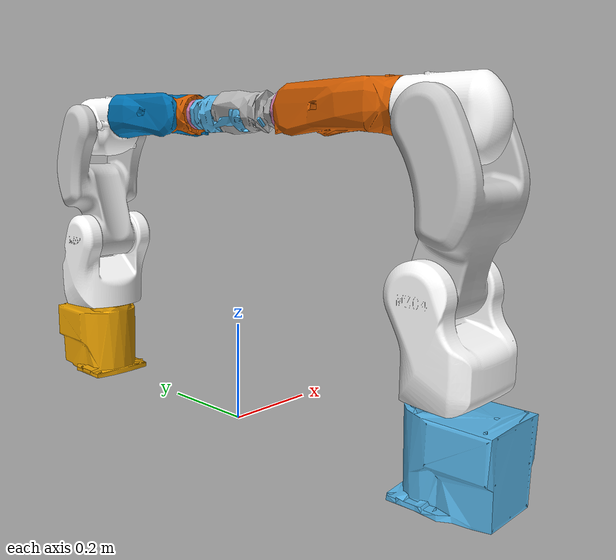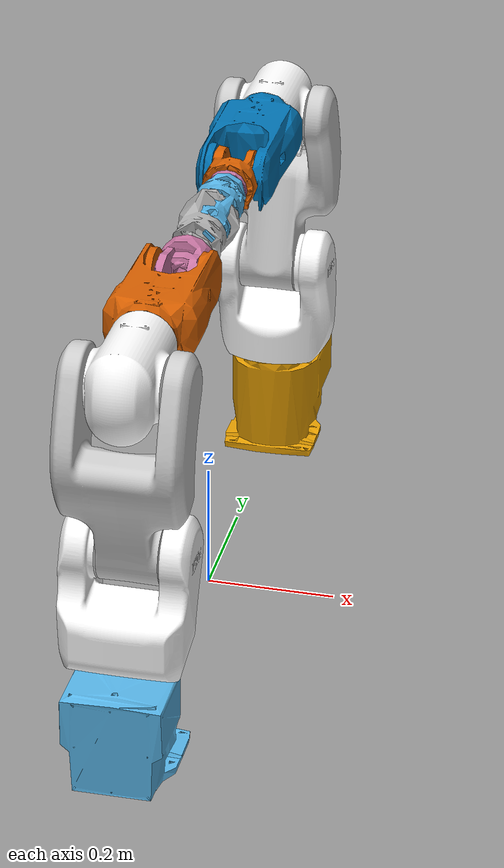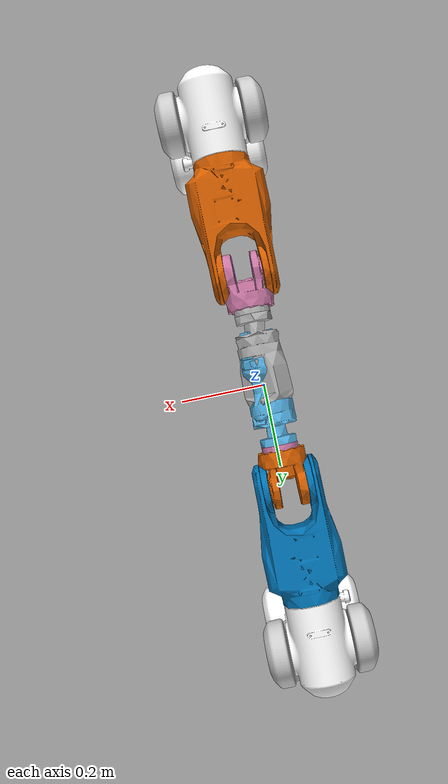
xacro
<?xml version="1.0" encoding="utf-8"?>
<robot xmlns:xacro="http://www.ros.org/wiki/xacro" name="dual_arm">
  <xacro:include filename="$(find mz04_description)/robots/mz04_arm.xacro"/>
  <xacro:include filename="$(find mz04_description)/robots/hand/robotiq_epick.xacro"/>
  <xacro:include filename="$(find mz04_description)/robots/hand/robotiq_hande.xacro"/>
  <xacro:arg name="arm_id_1" default="arm_L" />
  <xacro:arg name="arm_id_2" default="arm_R" />

  <link name="base" />
  <xacro:mz04_arm arm_id="$(arg arm_id_1)" connected_to="base"  xyz="0 -0.46534155 0" rpy="0 0 ${pi/2}"/>
  <xacro:mz04_arm arm_id="$(arg arm_id_2)" connected_to="base"  xyz="0 0.46534155 0" rpy="0 0 ${-pi/2}"/>

  <xacro:robotiq_epick parent="$(arg arm_id_1)_link6" name="hand_L">
    <origin xyz="0 0 0" rpy="0 0 -${pi}"/>
  </xacro:robotiq_epick>
  <xacro:robotiq_hand_e parent="$(arg arm_id_2)_link6" name="hand_R">
    <origin xyz="0 0 0" rpy="0 0 -${pi/2}"/>
  </xacro:robotiq_hand_e>

</robot>

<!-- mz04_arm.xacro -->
<robot xmlns:xacro="http://www.ros.org/wiki/xacro" name="mz04">
  <xacro:macro name="mz04_arm" params="arm_id:='mz04' description_pkg:='mz04_description' connected_to:='' xyz:='0 0 0' rpy:='0 0 0'">
    <xacro:unless value="${not connected_to}">
      <joint name="${arm_id}_joint_${connected_to}" type="fixed">
        <parent link="${connected_to}"/>
        <child link="${arm_id}_link0"/>
        <origin rpy="${rpy}" xyz="${xyz}"/>
      </joint>
    </xacro:unless>

    <!-- for simulation -->

    <xacro:property name="joint_damping" value="1.0"/>
    <!-- end for simulation -->

    <link name="${arm_id}_link0">
      <visual>
        <geometry>
          <mesh filename="package://${description_pkg}/meshes/visual/link0.dae"/>
        </geometry>
      </visual>
      <collision>
        <geometry>
          <mesh filename="package://${description_pkg}/meshes/collision/link0.stl"/>
        </geometry>
      </collision>
    </link>
    <link name="${arm_id}_link1">
      <visual>
        <geometry>
          <mesh filename="package://${description_pkg}/meshes/visual/link1.dae"/>
        </geometry>
      </visual>
      <collision>
        <geometry>
          <mesh filename="package://${description_pkg}/meshes/collision/link1.stl"/>
        </geometry>
      </collision>

      <!-- for simulation -->
      <inertial>
        <origin
          xyz="-0.0197023514199581 0.000938298692799631 0.0855256712156905"
          rpy="0 0 0" />
        <mass
          value="3.29244591173868" />
        <inertia
          ixx="0.0222350895636315"
          ixy="-6.0973596097687E-05"
          ixz="-0.00175393698078112"
          iyy="0.0154200096606875"
          iyz="-0.000258002191557829"
          izz="0.0150764764826899" />
      </inertial>
      <!-- end for simulation -->
    </link>
    <joint name="${arm_id}_joint1" type="revolute">
      <safety_controller k_position="100.0" k_velocity="40.0" soft_lower_limit="-2.97" soft_upper_limit="2.97"/>
      <origin rpy="0 0 0" xyz="0 0 0.171"/>
      <parent link="${arm_id}_link0"/>
      <child link="${arm_id}_link1"/>
      <axis xyz="0 0 1"/>
      <limit effort="100" lower="-2.97" upper="2.97" velocity="8.38"/>

      <!-- for simulation -->
      <dynamics damping="${joint_damping}"/>
      <!-- end for simulation -->
    </joint>
    <link name="${arm_id}_link2">
      <visual>
        <geometry>
          <mesh filename="package://${description_pkg}/meshes/visual/link2.dae"/>
        </geometry>
      </visual>
      <collision>
        <geometry>
          <mesh filename="package://${description_pkg}/meshes/collision/link2.stl"/>
        </geometry>
      </collision>

      <!-- for simulation -->
      <inertial>
        <origin
          xyz="-0.0229430342959031 -0.129313116426115 -0.000857512097067098"
          rpy="0 0 0" />
        <mass
          value="3.43354405526974" />
        <inertia
          ixx="0.0374859154128489"
          ixy="-0.000577795026903937"
          ixz="6.67389962661599E-05"
          iyy="0.0140465634657448"
          iyz="0.000377486259040234"
          izz="0.0301480758700004" />
      </inertial>
      <!-- end for simulation -->
    </link>
    <joint name="${arm_id}_joint2" type="revolute">
      <safety_controller k_position="100.0" k_velocity="40.0" soft_lower_limit="-2.53" soft_upper_limit="1.57"/>
      <origin rpy="${-pi/2} 0 0" xyz="0 0 0.169"/>
      <parent link="${arm_id}_link1"/>
      <child link="${arm_id}_link2"/>
      <axis xyz="0 0 -1"/>
      <limit effort="100" lower="-2.53" upper="1.57" velocity="8.03"/>

      <!-- for simulation -->
      <dynamics damping="${joint_damping}"/>
      <!-- end for simulation -->
    </joint>
    <link name="${arm_id}_link3">
      <visual>
        <geometry>
          <mesh filename="package://${description_pkg}/meshes/visual/link3.dae"/>
        </geometry>
      </visual>
      <collision>
        <geometry>
          <mesh filename="package://${description_pkg}/meshes/collision/link3.stl"/>
        </geometry>
      </collision>

      <!-- for simulation -->
      <inertial>
        <origin
          xyz="0.00557516997606589 -0.000280097155568842 -0.000264708631542377"
          rpy="0 0 0" />
        <mass
          value="1.75772574412506" />
        <inertia
          ixx="0.0032167713214568"
          ixy="-0.000191167581086016"
          ixz="1.23933539489604E-06"
          iyy="0.00322653422939074"
          iyz="5.25316745371768E-06"
          izz="0.00390619750681237" />
      </inertial>
      <!-- end for simulation -->
    </link>
    <joint name="${arm_id}_joint3" type="revolute">
      <safety_controller k_position="100.0" k_velocity="40.0" soft_lower_limit="-2.18" soft_upper_limit="4.89"/>
      <origin rpy="0 0 ${-pi/2}" xyz="0 -0.26 0"/>
      <parent link="${arm_id}_link2"/>
      <child link="${arm_id}_link3"/>
      <axis xyz="0 0 -1"/>
      <limit effort="100" lower="-2.18" upper="4.89" velocity="9.08"/>

      <!-- for simulation -->
      <dynamics damping="${joint_damping}"/>
      <!-- end for simulation -->
    </joint>
    <link name="${arm_id}_link4">
      <visual>
        <geometry>
          <mesh filename="package://${description_pkg}/meshes/visual/link4.dae"/>
        </geometry>
      </visual>
      <collision>
        <geometry>
          <mesh filename="package://${description_pkg}/meshes/collision/link4.stl"/>
        </geometry>
      </collision>

      <!-- for simulation -->
      <inertial>
        <origin
          xyz="0.00309024473150554 -0.000145366515908234 -0.102946189818116"
          rpy="0 0 0" />
        <mass
          value="1.70562401190118" />
        <inertia
          ixx="0.00721639807702088"
          ixy="-3.42236031590701E-07"
          ixz="5.92374124737924E-05"
          iyy="0.00686286874449402"
          iyz="5.84968158425155E-06"
          izz="0.00220615434229459" />
      </inertial>
      <!-- end for simulation -->
    </link>
    <joint name="${arm_id}_joint4" type="revolute">
      <safety_controller k_position="100.0" k_velocity="40.0" soft_lower_limit="-3.32" soft_upper_limit="3.32"/>
      <origin rpy="${-pi/2} 0 0" xyz="0.0249999999999999 0.28 0"/>
      <parent link="${arm_id}_link3"/>
      <child link="${arm_id}_link4"/>
      <axis xyz="0 0 1"/>
      <limit effort="100" lower="-3.32" upper="3.32" velocity="9.77"/>

      <!-- for simulation -->
      <dynamics damping="${joint_damping}"/>
      <!-- end for simulation -->
    </joint>
    <link name="${arm_id}_link5">
      <visual>
        <geometry>
          <mesh filename="package://${description_pkg}/meshes/visual/link5.dae"/>
        </geometry>
      </visual>
      <collision>
        <geometry>
          <mesh filename="package://${description_pkg}/meshes/collision/link5.stl"/>
        </geometry>
      </collision>

      <!-- for simulation -->
      <inertial>
        <origin
          xyz="-5.86547276966165E-05 0.0199090373472192 -0.00293631213635448"
          rpy="0 0 0" />
        <mass
          value="0.336399836903676" />
        <inertia
          ixx="0.000446624368283086"
          ixy="2.47061371480887E-07"
          ixz="6.15821325897774E-07"
          iyy="0.000330568174441235"
          iyz="-1.87705108529991E-05"
          izz="0.000351036334434016" />
      </inertial>
      <!-- end for simulation -->
    </link>
    <joint name="${arm_id}_joint5" type="revolute">
      <safety_controller k_position="100.0" k_velocity="40.0" soft_lower_limit="-2.09" soft_upper_limit="2.09"/>
      <origin rpy="${pi/2} 0 0" xyz="0 0 0"/>
      <parent link="${arm_id}_link4"/>
      <child link="${arm_id}_link5"/>
      <axis xyz="0 0 -1"/>
      <limit effort="100" lower="-2.09" upper="2.09" velocity="9.77"/>

      <!-- for simulation -->
      <dynamics damping="${joint_damping}"/>
      <!-- end for simulation -->
    </joint>
    <link name="${arm_id}_link6">
      <visual>
        <geometry>
          <mesh filename="package://${description_pkg}/meshes/visual/link6.dae"/>
        </geometry>
      </visual>
      <collision>
        <geometry>
          <mesh filename="package://${description_pkg}/meshes/collision/link6.stl"/>
        </geometry>
      </collision>

      <!-- for simulation -->
      <inertial>
        <origin
          xyz="0.00020870301755449 5.54207254168023E-05 0.0685507759319275"
          rpy="0 0 0" />
        <mass
          value="0.0340082287388899" />
        <inertia
          ixx="8.72489057883343E-06"
          ixy="5.14603740499548E-08"
          ixz="-7.72265367887762E-09"
          iyy="8.58258061822553E-06"
          iyz="-2.01661845696461E-09"
          izz="1.61785714739617E-05" />
      </inertial>
      <!-- end for simulation -->
    </link>
    <joint name="${arm_id}_joint6" type="revolute">
      <safety_controller k_position="100.0" k_velocity="40.0" soft_lower_limit="-6.28" soft_upper_limit="6.28"/>
      <origin rpy="${-pi/2} 0 0" xyz="0 0.072 0"/>
      <parent link="${arm_id}_link5"/>
      <child link="${arm_id}_link6"/>
      <axis xyz="0 0 1"/>
      <limit effort="10" lower="-6.28" upper="6.28" velocity="15.71"/>

      <!-- for simulation -->
      <dynamics damping="${joint_damping}"/>
      <!-- end for simulation -->
    </joint>
  </xacro:macro>
</robot>

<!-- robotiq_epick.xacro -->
<robot xmlns:xacro="http://www.ros.org/wiki/xacro" name="robotiq_epick">
  <xacro:macro name="robotiq_epick" params="parent name *origin ">
    <xacro:unless value="${parent == ''}">
      <joint name="${parent}_${name}_ee_joint" type="fixed">
        <xacro:insert_block name="origin"/>
        <parent link="${parent}"/>
        <child link="${name}_base"/>
      </joint>
    </xacro:unless>
    <link name="${name}_base">
      <visual>
        <geometry>
          <mesh filename="package://mz04_description/meshes/visual/white-robotiq_epick.dae"/>
        </geometry>
      </visual>
      <collision>
        <geometry>
          <mesh filename="package://mz04_description/meshes/collision/robotiq_epick.stl"/>
        </geometry>
      </collision>

      <!-- for simulation -->
      <inertial>
        <origin xyz="0 0 0" rpy="0 0 0" />
        <mass value="0.05" />
        <inertia ixx="0.1" ixy="0.0" ixz="0.0" iyy="0.1" iyz="0.0" izz="0.1" />
      </inertial>
      <!-- end for simulation -->
    </link>
    <link name="${name}_ee_link"/>
    <joint name="${name}_ee_joint" type="fixed">
      <origin xyz="0 0 0.2325" rpy="0 0 -${pi/4}" />
      <parent link="${name}_base" />
      <child link="${name}_ee_link" />
      <axis xyz="0 0 0" />
    </joint>
  </xacro:macro>
</robot>

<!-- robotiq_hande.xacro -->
<robot xmlns:xacro="http://www.ros.org/wiki/xacro" name="robotiq_hand_e">
  <xacro:macro name="robotiq_hand_e" params="parent name *origin ">
    <xacro:unless value="${parent == ''}">
      <joint name="${parent}_${name}_ee_joint" type="fixed">
        <xacro:insert_block name="origin"/>
        <parent link="${parent}"/>
        <child link="${name}_base"/>
      </joint>
    </xacro:unless>
    <link name="${name}_base">
      <visual>
        <geometry>
          <mesh filename="package://mz04_description/meshes/visual/white-robotiq_hande.dae"/>
        </geometry>
      </visual>
      <collision>
        <geometry>
          <mesh filename="package://mz04_description/meshes/collision/robotiq_hande.stl"/>
        </geometry>
      </collision>

      <!-- for simulation -->
      <inertial>
        <origin xyz="0 0 0" rpy="0 0 0" />
        <mass value="0.05" />
        <inertia ixx="0.1" ixy="0.0" ixz="0.0" iyy="0.1" iyz="0.0" izz="0.1" />
      </inertial>
      <!-- end for simulation -->
    </link>
    <link name="${name}_ee_link"/>
    <joint name="${name}_ee_joint" type="fixed">
      <origin xyz="0 0 0.1983" rpy="0 0 -${pi/4}" />
      <parent link="${name}_base" />
      <child link="${name}_ee_link" />
      <axis xyz="0 0 0" />
    </joint>
  </xacro:macro>
</robot>
